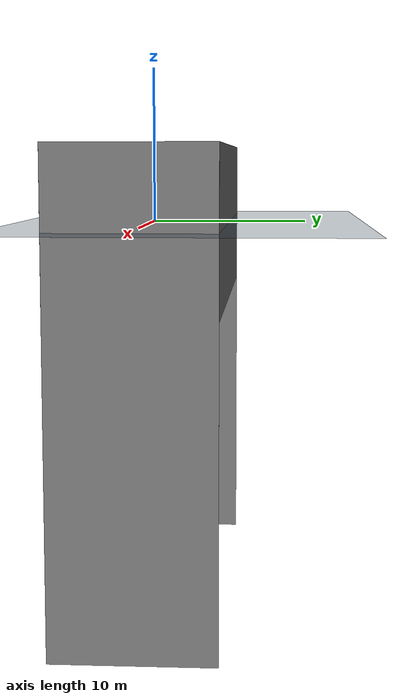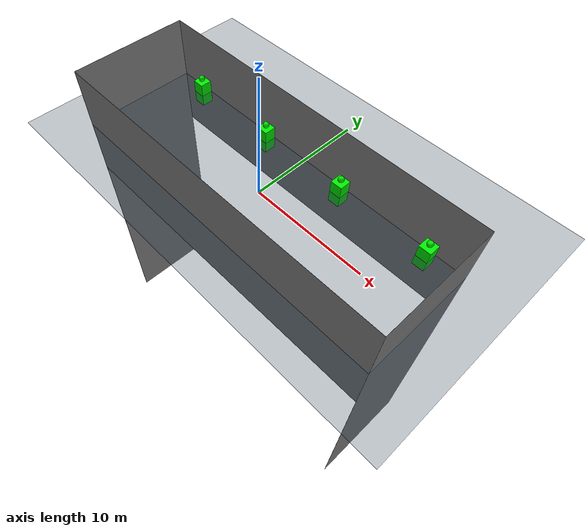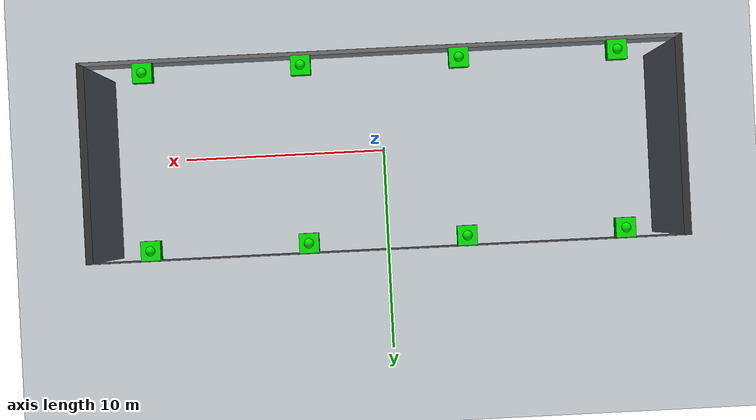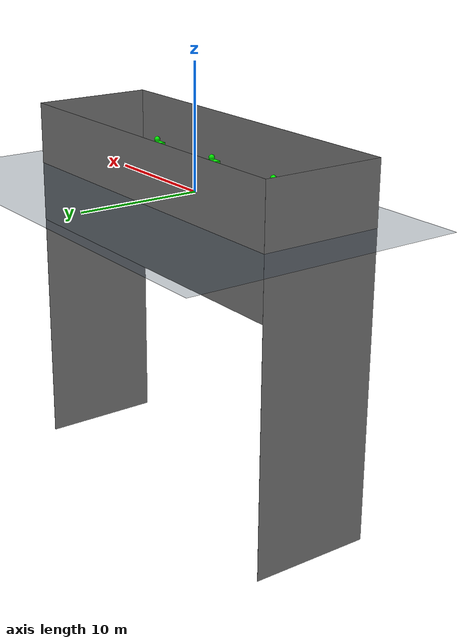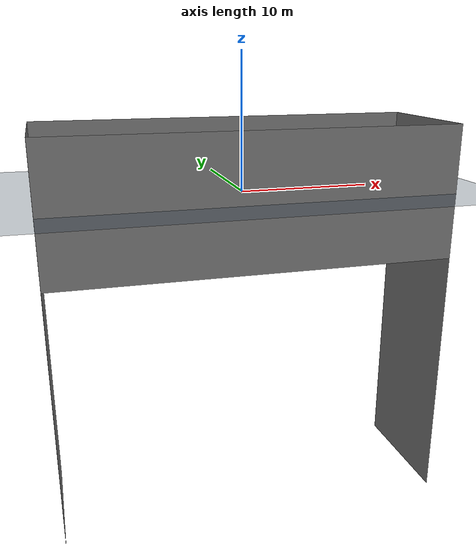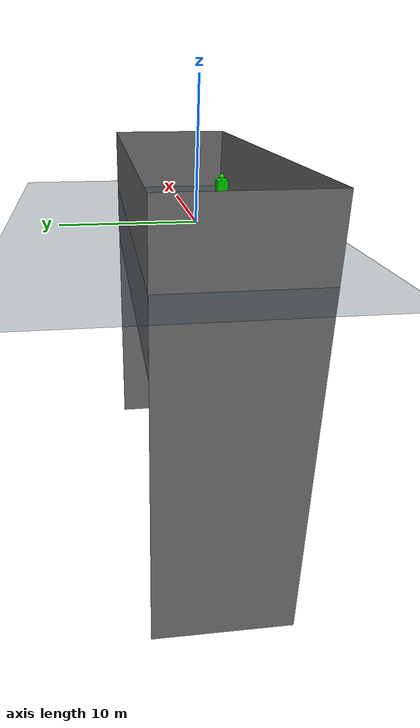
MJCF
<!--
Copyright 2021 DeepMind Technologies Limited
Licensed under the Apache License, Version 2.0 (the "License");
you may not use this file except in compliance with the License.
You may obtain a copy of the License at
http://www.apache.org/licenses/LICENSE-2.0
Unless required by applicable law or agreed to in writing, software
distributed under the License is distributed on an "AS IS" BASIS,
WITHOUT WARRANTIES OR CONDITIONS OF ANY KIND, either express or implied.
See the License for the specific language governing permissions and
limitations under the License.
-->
<mujoco>
  <compiler meshdir="asset" texturedir="asset"/>
  <statistic extent="1.5" meansize=".05"/>

  <option timestep="0.001" integrator="implicitfast"/>

  <visual>
    <rgba haze="0.15 0.25 0.35 1"/>
    <quality shadowsize="4096"/>
    <map stiffness="700" shadowscale="0.5" fogstart="10" fogend="15" zfar="40" haze="0.3"/>
  </visual>

  <asset>
    <texture type="skybox" builtin="gradient" rgb1="0.3 0.5 0.7" rgb2="0 0 0" width="512" height="512"/>
    <texture name="texplane" type="2d" builtin="checker" rgb1=".2 .3 .4" rgb2=".1 0.15 0.2"
      width="512" height="512" mark="cross" markrgb=".8 .8 .8"/>
    <material name="matplane" reflectance="0.3" texture="texplane" texrepeat="1 1" texuniform="true"/>
  </asset>

    <default class="wall">
      <geom type="plane" size=" 15 5 .05"/>
    </default>

  <worldbody>
    <light directional="true" diffuse=".4 .4 .4" specular="0.1 0.1 0.1" pos="0 0 5.0" dir="0 0 -1" castshadow="false"/>
    <light directional="true" diffuse=".6 .6 .6" specular="0.2 0.2 0.2" pos="0 0 4" dir="0 0 -1"/>

    <geom name="ground" type="plane" size="0 0 1" pos="0 0 0" quat="1 0 0 0" material="matplane" condim="1"/>

    <geom name="+x" class="wall" zaxis="0 1 0"  pos="0 -5 0"/>
    <geom name="-x" class="wall" zaxis="0 -1 0" pos="0 5 0"/>
    <geom name="+y" class="wall" zaxis="1 0 0"  pos="-15 0 -10"/>
    <geom name="-y" class="wall" zaxis="-1 0 0" pos="15 0 -10"/>

       <body pos="0 0 0">
           <geom type="box" size=".5 .5 1" rgba="0 .9 0 1" pos="12 4.5 -0"/>
         <geom type="box" size=".5 .5 1" rgba="0 .9 0 1" pos="4 4.5 -0"/>
         <geom type="box" size=".5 .5 1" rgba="0 .9 0 1" pos="-4 4.5 -0"/>
         <geom type="box" size=".5 .5 1" rgba="0 .9 0 1" pos="-12 4.5 -0"/>

         <geom type="box" size=".5 .5 1" rgba="0 .9 0 1" pos="12 -4.5 -0"/>
       <geom type="box" size=".5 .5 1" rgba="0 .9 0 1" pos="4 -4.5 -0"/>
       <geom type="box" size=".5 .5 1" rgba="0 .9 0 1" pos="-4 -4.5 -0"/>
       <geom type="box" size=".5 .5 1" rgba="0 .9 0 1" pos="-12 -4.5 -0"/>

       <geom type="sphere" size=".25 .25 .25" rgba="0 .9 0 1" pos="12 4.5 1.25"/>
     <geom type="sphere" size=".25 .25 .25" rgba="0 .9 0 1" pos="4 4.5 1.25"/>
     <geom type="sphere" size=".25 .25 .25" rgba="0 .9 0 1" pos="-4 4.5 1.25"/>
     <geom type="sphere" size=".25 .25 .25" rgba="0 .9 0 1" pos="-12 4.5 1.25"/>

     <geom type="sphere" size=".25 .25 .25" rgba="0 .9 0 1" pos="12 -4.5 1.25"/>
   <geom type="sphere" size=".25 .25 .25" rgba="0 .9 0 1" pos="4 -4.5 1.25"/>
   <geom type="sphere" size=".25 .25 .25" rgba="0 .9 0 1" pos="-4 -4.5 1.25"/>
   <geom type="sphere" size=".25 .25 .25" rgba="0 .9 0 1" pos="-12 -4.5 1.25"/>

       </body>

  </worldbody>
</mujoco>
